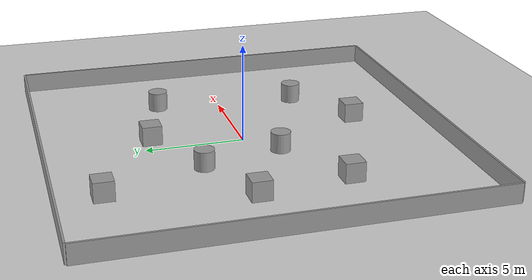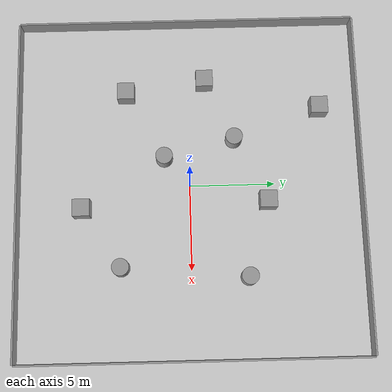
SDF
<sdf version="1.7">
 <world name="empty_world">
  <light name="sun" type="directional">
   <pose>0 0 10 0 -0 0</pose>
   <diffuse>0.8 0.8 0.8 1</diffuse>
   <specular>0.2 0.2 0.2 1</specular>
   <attenuation>
    <range>1000</range>
    <constant>0.9</constant>
    <linear>0.01</linear>
    <quadratic>0.001</quadratic>
   </attenuation>
   <direction>-0.5 0.1 -0.9</direction>
   <spot><inner_angle>0</inner_angle><outer_angle>0</outer_angle><falloff>0</falloff></spot>
  </light>
  <model name="ground_plane">
   <static>1</static>
   <link name="link">
    <collision name="collision">
     <geometry><plane><normal>0 0 1</normal><size>1 1</size></plane></geometry>
    </collision>
    <visual name="visual">
     <geometry><plane><normal>0 0 1</normal><size>100 100</size></plane></geometry>
     <material>
      <ambient>0.8 0.8 0.8 1</ambient>
      <diffuse>0.8 0.8 0.8 1</diffuse>
      <specular>0.8 0.8 0.8 1</specular>
     </material>
    </visual>
   </link>
  </model>
  <gravity>0 0 -9.8</gravity>
  <magnetic_field>6e-06 2.3e-05 -4.2e-05</magnetic_field>
  <atmosphere type="adiabatic"/>
  <physics type="ode">
   <max_step_size>0.001</max_step_size>
   <real_time_factor>1</real_time_factor>
   <real_time_update_rate>1000</real_time_update_rate>
  </physics>
  <scene><ambient>0.4 0.4 0.4 1</ambient><background>0.7 0.7 0.7 1</background><shadows>1</shadows></scene>
  <audio><device>default</device></audio>
  <spherical_coordinates>
   <surface_model>EARTH_WGS84</surface_model>
   <latitude_deg>-37.5954112</latitude_deg>
   <longitude_deg>143.8511375</longitude_deg>
   <elevation>0</elevation>
   <heading_deg>0</heading_deg>
  </spherical_coordinates>
  <model name="unit_cylinder">
   <pose>4.76025 -4.059 0.499992 -3e-06 3e-06 0</pose>
   <link name="link">
    <inertial>
     <mass>1</mass>
     <inertia><ixx>0.145833</ixx><ixy>0</ixy><ixz>0</ixz><iyy>0.145833</iyy><iyz>0</iyz><izz>0.125</izz></inertia>
    </inertial>
    <collision name="collision">
     <geometry><cylinder><radius>0.5</radius><length>1</length></cylinder></geometry>
    </collision>
    <visual name="visual">
     <geometry><cylinder><radius>0.5</radius><length>1</length></cylinder></geometry>
     <material>
      <script><name>Gazebo/Grey</name><uri>file://media/materials/scripts/gazebo.material</uri></script>
     </material>
    </visual>
   </link>
  </model>
  <model name="unit_box">
   <pose>1.02697 4.53318 0.5 0 -0 0</pose>
   <link name="link">
    <inertial>
     <mass>1</mass>
     <inertia>
      <ixx>0.166667</ixx>
      <ixy>0</ixy>
      <ixz>0</ixz>
      <iyy>0.166667</iyy>
      <iyz>0</iyz>
      <izz>0.166667</izz>
     </inertia>
    </inertial>
    <collision name="collision"><geometry><box><size>1 1 1</size></box></geometry></collision>
    <visual name="visual">
     <geometry><box><size>1 1 1</size></box></geometry>
     <material>
      <script><name>Gazebo/Grey</name><uri>file://media/materials/scripts/gazebo.material</uri></script>
     </material>
    </visual>
   </link>
  </model>
  <model name="unit_cylinder_0">
   <pose>-2.74351 2.6673 0.499992 -3e-06 4e-06 0</pose>
   <link name="link">
    <inertial>
     <mass>1</mass>
     <inertia><ixx>0.145833</ixx><ixy>0</ixy><ixz>0</ixz><iyy>0.145833</iyy><iyz>0</iyz><izz>0.125</izz></inertia>
    </inertial>
    <collision name="collision">
     <geometry><cylinder><radius>0.5</radius><length>1</length></cylinder></geometry>
    </collision>
    <visual name="visual">
     <geometry><cylinder><radius>0.5</radius><length>1</length></cylinder></geometry>
     <material>
      <script><name>Gazebo/Grey</name><uri>file://media/materials/scripts/gazebo.material</uri></script>
     </material>
    </visual>
   </link>
  </model>
  <model name="unit_box_0">
   <pose>-4.55986 7.77725 0.5 0 -0 0</pose>
   <link name="link">
    <inertial>
     <mass>1</mass>
     <inertia>
      <ixx>0.166667</ixx>
      <ixy>0</ixy>
      <ixz>0</ixz>
      <iyy>0.166667</iyy>
      <iyz>0</iyz>
      <izz>0.166667</izz>
     </inertia>
    </inertial>
    <collision name="collision"><geometry><box><size>1 1 1</size></box></geometry></collision>
    <visual name="visual">
     <geometry><box><size>1 1 1</size></box></geometry>
     <material>
      <script><name>Gazebo/Grey</name><uri>file://media/materials/scripts/gazebo.material</uri></script>
     </material>
    </visual>
   </link>
  </model>
  <model name="unit_cylinder_1">
   <pose>5.42856 3.29661 0.499992 -3e-06 4e-06 0</pose>
   <link name="link">
    <inertial>
     <mass>1</mass>
     <inertia><ixx>0.145833</ixx><ixy>0</ixy><ixz>0</ixz><iyy>0.145833</iyy><iyz>0</iyz><izz>0.125</izz></inertia>
    </inertial>
    <collision name="collision">
     <geometry><cylinder><radius>0.5</radius><length>1</length></cylinder></geometry>
    </collision>
    <visual name="visual">
     <geometry><cylinder><radius>0.5</radius><length>1</length></cylinder></geometry>
     <material>
      <script><name>Gazebo/Grey</name><uri>file://media/materials/scripts/gazebo.material</uri></script>
     </material>
    </visual>
   </link>
  </model>
  <model name="unit_box_1">
   <pose>-5.68165 -3.66961 0.5 0 -0 0</pose>
   <link name="link">
    <inertial>
     <mass>1</mass>
     <inertia>
      <ixx>0.166667</ixx>
      <ixy>0</ixy>
      <ixz>0</ixz>
      <iyy>0.166667</iyy>
      <iyz>0</iyz>
      <izz>0.166667</izz>
     </inertia>
    </inertial>
    <collision name="collision"><geometry><box><size>1 1 1</size></box></geometry></collision>
    <visual name="visual">
     <geometry><box><size>1 1 1</size></box></geometry>
     <material>
      <script><name>Gazebo/Grey</name><uri>file://media/materials/scripts/gazebo.material</uri></script>
     </material>
    </visual>
   </link>
  </model>
  <model name="unit_box_2">
   <pose>-6.36906 1.01117 0.5 -0 -0 -0</pose>
   <link name="link">
    <inertial>
     <mass>1</mass>
     <inertia>
      <ixx>0.166667</ixx>
      <ixy>0</ixy>
      <ixz>0</ixz>
      <iyy>0.166667</iyy>
      <iyz>0</iyz>
      <izz>0.166667</izz>
     </inertia>
    </inertial>
    <collision name="collision"><geometry><box><size>1 1 1</size></box></geometry></collision>
    <visual name="visual">
     <geometry><box><size>1 1 1</size></box></geometry>
     <material>
      <script><name>Gazebo/Grey</name><uri>file://media/materials/scripts/gazebo.material</uri></script>
     </material>
    </visual>
   </link>
  </model>
  <model name="unit_cylinder_2">
   <pose>-1.6746 -1.46099 0.499993 -3e-06 -4e-06 -0</pose>
   <link name="link">
    <inertial>
     <mass>1</mass>
     <inertia><ixx>0.145833</ixx><ixy>0</ixy><ixz>0</ixz><iyy>0.145833</iyy><iyz>0</iyz><izz>0.125</izz></inertia>
    </inertial>
    <collision name="collision">
     <geometry><cylinder><radius>0.5</radius><length>1</length></cylinder></geometry>
    </collision>
    <visual name="visual">
     <geometry><cylinder><radius>0.5</radius><length>1</length></cylinder></geometry>
     <material>
      <script><name>Gazebo/Grey</name><uri>file://media/materials/scripts/gazebo.material</uri></script>
     </material>
    </visual>
   </link>
  </model>
  <model name="unit_box_3">
   <pose>1.28643 -6.30166 0.5 -0 -0 -0</pose>
   <link name="link">
    <inertial>
     <mass>1</mass>
     <inertia>
      <ixx>0.166667</ixx>
      <ixy>0</ixy>
      <ixz>0</ixz>
      <iyy>0.166667</iyy>
      <iyz>0</iyz>
      <izz>0.166667</izz>
     </inertia>
    </inertial>
    <collision name="collision"><geometry><box><size>1 1 1</size></box></geometry></collision>
    <visual name="visual">
     <geometry><box><size>1 1 1</size></box></geometry>
     <material>
      <script><name>Gazebo/Grey</name><uri>file://media/materials/scripts/gazebo.material</uri></script>
     </material>
    </visual>
   </link>
  </model>
  <model name="border_wall">
   <static>1</static>
   <link name="link">
    <collision name="collision1">
     <pose>0 10.05 0.5 0 0 0</pose>
     <geometry><box><size>20 0.1 1</size></box></geometry>
    </collision>
    <visual name="visual1">
     <pose>0 10.05 0.5 0 0 0</pose>
     <geometry><box><size>20 0.1 1</size></box></geometry>
     <material>
      <script><name>Gazebo/Grey</name><uri>file://media/materials/scripts/gazebo.material</uri></script>
     </material>
    </visual>
    <collision name="collision2">
     <pose>0 -10.05 0.5 0 0 0</pose>
     <geometry><box><size>20 0.1 1</size></box></geometry>
    </collision>
    <visual name="visual2">
     <pose>0 -10.05 0.5 0 0 0</pose>
     <geometry><box><size>20 0.1 1</size></box></geometry>
     <material>
      <script><name>Gazebo/Grey</name><uri>file://media/materials/scripts/gazebo.material</uri></script>
     </material>
    </visual>
    <collision name="collision3">
     <pose>10.05 0 0.5 0 0 0</pose>
     <geometry><box><size>0.1 20 1</size></box></geometry>
    </collision>
    <visual name="visual3">
     <pose>10.05 0 0.5 0 0 0</pose>
     <geometry><box><size>0.1 20 1</size></box></geometry>
     <material>
      <script><name>Gazebo/Grey</name><uri>file://media/materials/scripts/gazebo.material</uri></script>
     </material>
    </visual>
    <collision name="collision4">
     <pose>-10.05 0 0.5 0 0 0</pose>
     <geometry><box><size>0.1 20 1</size></box></geometry>
    </collision>
    <visual name="visual4">
     <pose>-10.05 0 0.5 0 0 0</pose>
     <geometry><box><size>0.1 20 1</size></box></geometry>
     <material>
      <script><name>Gazebo/Grey</name><uri>file://media/materials/scripts/gazebo.material</uri></script>
     </material>
    </visual>
   </link>
  </model>
 </world>
</sdf>
